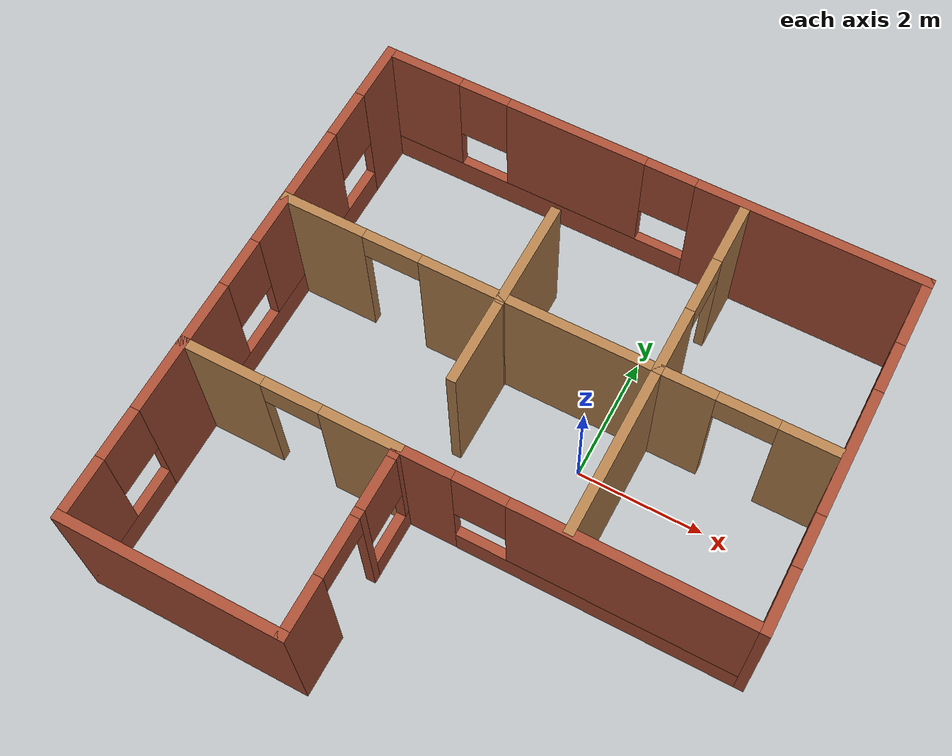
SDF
<?xml version='1.0'?>
<sdf version='1.7'>
  <model name='квартираы'>
    <pose>-0.914351 -0.390647 0 0 -0 0</pose>
    <link name='Wall_11'>
      <pose>-4.3 1.425 0 0 -0 -1.5708</pose>
      <visual name='Wall_11_Visual_0'>
        <pose>-2.38617 0 1.25 0 -0 0</pose>
        <geometry>
          <box>
            <size>0.97767 0.15 2.5</size>
          </box>
        </geometry>
        <material>
          <script>
            <uri>file://media/materials/scripts/gazebo.material</uri>
            <name>Gazebo/Bricks</name>
          </script>
          <ambient>1 1 1 1</ambient>
        </material>
        <meta>
          <layer>0</layer>
        </meta>
      </visual>
      <collision name='Wall_11_Collision_0'>
        <geometry>
          <box>
            <size>0.97767 0.15 2.5</size>
          </box>
        </geometry>
        <pose>-2.38617 0 1.25 0 -0 0</pose>
      </collision>
      <visual name='Wall_11_Visual_1'>
        <pose>0.488835 0 0.25 0 -0 0</pose>
        <geometry>
          <box>
            <size>4.77233 0.15 0.5</size>
          </box>
        </geometry>
        <material>
          <script>
            <uri>file://media/materials/scripts/gazebo.material</uri>
            <name>Gazebo/Bricks</name>
          </script>
          <ambient>1 1 1 1</ambient>
        </material>
        <meta>
          <layer>0</layer>
        </meta>
      </visual>
      <collision name='Wall_11_Collision_1'>
        <geometry>
          <box>
            <size>4.77233 0.15 0.5</size>
          </box>
        </geometry>
        <pose>0.488835 0 0.25 0 -0 0</pose>
      </collision>
      <visual name='Wall_11_Visual_2'>
        <pose>-0.055089 0 1.5 0 -0 0</pose>
        <geometry>
          <box>
            <size>2.08448 0.15 2</size>
          </box>
        </geometry>
        <material>
          <script>
            <uri>file://media/materials/scripts/gazebo.material</uri>
            <name>Gazebo/Bricks</name>
          </script>
          <ambient>1 1 1 1</ambient>
        </material>
        <meta>
          <layer>0</layer>
        </meta>
      </visual>
      <collision name='Wall_11_Collision_2'>
        <geometry>
          <box>
            <size>2.08448 0.15 2</size>
          </box>
        </geometry>
        <pose>-0.055089 0 1.5 0 -0 0</pose>
      </collision>
      <visual name='Wall_11_Visual_3'>
        <pose>2.33108 0 1.5 0 -0 0</pose>
        <geometry>
          <box>
            <size>1.08785 0.15 2</size>
          </box>
        </geometry>
        <material>
          <script>
            <uri>file://media/materials/scripts/gazebo.material</uri>
            <name>Gazebo/Bricks</name>
          </script>
          <ambient>1 1 1 1</ambient>
        </material>
        <meta>
          <layer>0</layer>
        </meta>
      </visual>
      <collision name='Wall_11_Collision_3'>
        <geometry>
          <box>
            <size>1.08785 0.15 2</size>
          </box>
        </geometry>
        <pose>2.33108 0 1.5 0 -0 0</pose>
      </collision>
      <visual name='Wall_11_Visual_4'>
        <pose>-1.49733 0 1.9 0 -0 0</pose>
        <geometry>
          <box>
            <size>0.8 0.15 1.2</size>
          </box>
        </geometry>
        <material>
          <script>
            <uri>file://media/materials/scripts/gazebo.material</uri>
            <name>Gazebo/Bricks</name>
          </script>
          <ambient>1 1 1 1</ambient>
        </material>
        <meta>
          <layer>0</layer>
        </meta>
      </visual>
      <collision name='Wall_11_Collision_4'>
        <geometry>
          <box>
            <size>0.8 0.15 1.2</size>
          </box>
        </geometry>
        <pose>-1.49733 0 1.9 0 -0 0</pose>
      </collision>
      <visual name='Wall_11_Visual_5'>
        <pose>1.38715 0 1.9 0 -0 0</pose>
        <geometry>
          <box>
            <size>0.8 0.15 1.2</size>
          </box>
        </geometry>
        <material>
          <script>
            <uri>file://media/materials/scripts/gazebo.material</uri>
            <name>Gazebo/Bricks</name>
          </script>
          <ambient>1 1 1 1</ambient>
        </material>
        <meta>
          <layer>0</layer>
        </meta>
      </visual>
      <collision name='Wall_11_Collision_5'>
        <geometry>
          <box>
            <size>0.8 0.15 1.2</size>
          </box>
        </geometry>
        <pose>1.38715 0 1.9 0 -0 0</pose>
      </collision>
    </link>
    <link name='Wall_13'>
      <pose>4.3 1.425 0 0 -0 1.5708</pose>
      <visual name='Wall_13_Visual_0'>
        <pose>-2.3776 0 1.25 0 -0 0</pose>
        <geometry>
          <box>
            <size>0.9948 0.15 2.5</size>
          </box>
        </geometry>
        <material>
          <script>
            <uri>file://media/materials/scripts/gazebo.material</uri>
            <name>Gazebo/Bricks</name>
          </script>
          <ambient>1 1 1 1</ambient>
        </material>
        <meta>
          <layer>0</layer>
        </meta>
      </visual>
      <collision name='Wall_13_Collision_0'>
        <geometry>
          <box>
            <size>0.9948 0.15 2.5</size>
          </box>
        </geometry>
        <pose>-2.3776 0 1.25 0 -0 0</pose>
      </collision>
      <visual name='Wall_13_Visual_1'>
        <pose>0.4974 0 0.25 0 -0 0</pose>
        <geometry>
          <box>
            <size>4.7552 0.15 0.5</size>
          </box>
        </geometry>
        <material>
          <script>
            <uri>file://media/materials/scripts/gazebo.material</uri>
            <name>Gazebo/Bricks</name>
          </script>
          <ambient>1 1 1 1</ambient>
        </material>
        <meta>
          <layer>0</layer>
        </meta>
      </visual>
      <collision name='Wall_13_Collision_1'>
        <geometry>
          <box>
            <size>4.7552 0.15 0.5</size>
          </box>
        </geometry>
        <pose>0.4974 0 0.25 0 -0 0</pose>
      </collision>
      <visual name='Wall_13_Visual_2'>
        <pose>-0.084483 0 1.5 0 -0 0</pose>
        <geometry>
          <box>
            <size>1.99144 0.15 2</size>
          </box>
        </geometry>
        <material>
          <script>
            <uri>file://media/materials/scripts/gazebo.material</uri>
            <name>Gazebo/Bricks</name>
          </script>
          <ambient>1 1 1 1</ambient>
        </material>
        <meta>
          <layer>0</layer>
        </meta>
      </visual>
      <collision name='Wall_13_Collision_2'>
        <geometry>
          <box>
            <size>1.99144 0.15 2</size>
          </box>
        </geometry>
        <pose>-0.084483 0 1.5 0 -0 0</pose>
      </collision>
      <visual name='Wall_13_Visual_3'>
        <pose>2.29312 0 1.5 0 -0 0</pose>
        <geometry>
          <box>
            <size>1.16376 0.15 2</size>
          </box>
        </geometry>
        <material>
          <script>
            <uri>file://media/materials/scripts/gazebo.material</uri>
            <name>Gazebo/Bricks</name>
          </script>
          <ambient>1 1 1 1</ambient>
        </material>
        <meta>
          <layer>0</layer>
        </meta>
      </visual>
      <collision name='Wall_13_Collision_3'>
        <geometry>
          <box>
            <size>1.16376 0.15 2</size>
          </box>
        </geometry>
        <pose>2.29312 0 1.5 0 -0 0</pose>
      </collision>
      <visual name='Wall_13_Visual_4'>
        <pose>-1.4802 0 1.9 0 -0 0</pose>
        <geometry>
          <box>
            <size>0.8 0.15 1.2</size>
          </box>
        </geometry>
        <material>
          <script>
            <uri>file://media/materials/scripts/gazebo.material</uri>
            <name>Gazebo/Bricks</name>
          </script>
          <ambient>1 1 1 1</ambient>
        </material>
        <meta>
          <layer>0</layer>
        </meta>
      </visual>
      <collision name='Wall_13_Collision_4'>
        <geometry>
          <box>
            <size>0.8 0.15 1.2</size>
          </box>
        </geometry>
        <pose>-1.4802 0 1.9 0 -0 0</pose>
      </collision>
      <visual name='Wall_13_Visual_5'>
        <pose>1.31123 0 1.9 0 -0 0</pose>
        <geometry>
          <box>
            <size>0.8 0.15 1.2</size>
          </box>
        </geometry>
        <material>
          <script>
            <uri>file://media/materials/scripts/gazebo.material</uri>
            <name>Gazebo/Bricks</name>
          </script>
          <ambient>1 1 1 1</ambient>
        </material>
        <meta>
          <layer>0</layer>
        </meta>
      </visual>
      <collision name='Wall_13_Collision_5'>
        <geometry>
          <box>
            <size>0.8 0.15 1.2</size>
          </box>
        </geometry>
        <pose>1.31123 0 1.9 0 -0 0</pose>
      </collision>
    </link>
    <link name='Wall_14'>
      <pose>0 4.225 0 0 -0 3.14159</pose>
      <visual name='Wall_14_Visual_0'>
        <pose>-2.57533 0 1.25 0 -0 0</pose>
        <geometry>
          <box>
            <size>3.59935 0.15 2.5</size>
          </box>
        </geometry>
        <material>
          <script>
            <uri>file://media/materials/scripts/gazebo.material</uri>
            <name>Gazebo/Bricks</name>
          </script>
          <ambient>1 1 1 1</ambient>
        </material>
        <meta>
          <layer>0</layer>
        </meta>
      </visual>
      <collision name='Wall_14_Collision_0'>
        <geometry>
          <box>
            <size>3.59935 0.15 2.5</size>
          </box>
        </geometry>
        <pose>-2.57533 0 1.25 0 -0 0</pose>
      </collision>
      <visual name='Wall_14_Visual_1'>
        <pose>1.79967 0 0.25 0 -0 0</pose>
        <geometry>
          <box>
            <size>5.15065 0.15 0.5</size>
          </box>
        </geometry>
        <material>
          <script>
            <uri>file://media/materials/scripts/gazebo.material</uri>
            <name>Gazebo/Bricks</name>
          </script>
          <ambient>1 1 1 1</ambient>
        </material>
        <meta>
          <layer>0</layer>
        </meta>
      </visual>
      <collision name='Wall_14_Collision_1'>
        <geometry>
          <box>
            <size>5.15065 0.15 0.5</size>
          </box>
        </geometry>
        <pose>1.79967 0 0.25 0 -0 0</pose>
      </collision>
      <visual name='Wall_14_Visual_2'>
        <pose>1.148 0 1.5 0 -0 0</pose>
        <geometry>
          <box>
            <size>2.24732 0.15 2</size>
          </box>
        </geometry>
        <material>
          <script>
            <uri>file://media/materials/scripts/gazebo.material</uri>
            <name>Gazebo/Bricks</name>
          </script>
          <ambient>1 1 1 1</ambient>
        </material>
        <meta>
          <layer>0</layer>
        </meta>
      </visual>
      <collision name='Wall_14_Collision_2'>
        <geometry>
          <box>
            <size>2.24732 0.15 2</size>
          </box>
        </geometry>
        <pose>1.148 0 1.5 0 -0 0</pose>
      </collision>
      <visual name='Wall_14_Visual_3'>
        <pose>3.72333 0 1.5 0 -0 0</pose>
        <geometry>
          <box>
            <size>1.30334 0.15 2</size>
          </box>
        </geometry>
        <material>
          <script>
            <uri>file://media/materials/scripts/gazebo.material</uri>
            <name>Gazebo/Bricks</name>
          </script>
          <ambient>1 1 1 1</ambient>
        </material>
        <meta>
          <layer>0</layer>
        </meta>
      </visual>
      <collision name='Wall_14_Collision_3'>
        <geometry>
          <box>
            <size>1.30334 0.15 2</size>
          </box>
        </geometry>
        <pose>3.72333 0 1.5 0 -0 0</pose>
      </collision>
      <visual name='Wall_14_Visual_4'>
        <pose>-0.375653 0 1.9 0 -0 0</pose>
        <geometry>
          <box>
            <size>0.8 0.15 1.2</size>
          </box>
        </geometry>
        <material>
          <script>
            <uri>file://media/materials/scripts/gazebo.material</uri>
            <name>Gazebo/Bricks</name>
          </script>
          <ambient>1 1 1 1</ambient>
        </material>
        <meta>
          <layer>0</layer>
        </meta>
      </visual>
      <collision name='Wall_14_Collision_4'>
        <geometry>
          <box>
            <size>0.8 0.15 1.2</size>
          </box>
        </geometry>
        <pose>-0.375653 0 1.9 0 -0 0</pose>
      </collision>
      <visual name='Wall_14_Visual_5'>
        <pose>2.67166 0 1.9 0 -0 0</pose>
        <geometry>
          <box>
            <size>0.8 0.15 1.2</size>
          </box>
        </geometry>
        <material>
          <script>
            <uri>file://media/materials/scripts/gazebo.material</uri>
            <name>Gazebo/Bricks</name>
          </script>
          <ambient>1 1 1 1</ambient>
        </material>
        <meta>
          <layer>0</layer>
        </meta>
      </visual>
      <collision name='Wall_14_Collision_5'>
        <geometry>
          <box>
            <size>0.8 0.15 1.2</size>
          </box>
        </geometry>
        <pose>2.67166 0 1.9 0 -0 0</pose>
      </collision>
    </link>
    <link name='Wall_16'>
      <pose>-4.3 -2.8 0 0 -0 -1.5708</pose>
      <visual name='Wall_16_Visual_0'>
        <pose>-0.89179 0 1.25 0 -0 0</pose>
        <geometry>
          <box>
            <size>1.21642 0.15 2.5</size>
          </box>
        </geometry>
        <material>
          <script>
            <uri>file://media/materials/scripts/gazebo.material</uri>
            <name>Gazebo/Bricks</name>
          </script>
          <ambient>1 1 1 1</ambient>
        </material>
        <meta>
          <layer>0</layer>
        </meta>
      </visual>
      <collision name='Wall_16_Collision_0'>
        <geometry>
          <box>
            <size>1.21642 0.15 2.5</size>
          </box>
        </geometry>
        <pose>-0.89179 0 1.25 0 -0 0</pose>
      </collision>
      <visual name='Wall_16_Visual_1'>
        <pose>0.60821 0 0.25 0 -0 0</pose>
        <geometry>
          <box>
            <size>1.78358 0.15 0.5</size>
          </box>
        </geometry>
        <material>
          <script>
            <uri>file://media/materials/scripts/gazebo.material</uri>
            <name>Gazebo/Bricks</name>
          </script>
          <ambient>1 1 1 1</ambient>
        </material>
        <meta>
          <layer>0</layer>
        </meta>
      </visual>
      <collision name='Wall_16_Collision_1'>
        <geometry>
          <box>
            <size>1.78358 0.15 0.5</size>
          </box>
        </geometry>
        <pose>0.60821 0 0.25 0 -0 0</pose>
      </collision>
      <visual name='Wall_16_Visual_2'>
        <pose>1.00821 0 1.5 0 -0 0</pose>
        <geometry>
          <box>
            <size>0.983579 0.15 2</size>
          </box>
        </geometry>
        <material>
          <script>
            <uri>file://media/materials/scripts/gazebo.material</uri>
            <name>Gazebo/Bricks</name>
          </script>
          <ambient>1 1 1 1</ambient>
        </material>
        <meta>
          <layer>0</layer>
        </meta>
      </visual>
      <collision name='Wall_16_Collision_2'>
        <geometry>
          <box>
            <size>0.983579 0.15 2</size>
          </box>
        </geometry>
        <pose>1.00821 0 1.5 0 -0 0</pose>
      </collision>
      <visual name='Wall_16_Visual_3'>
        <pose>0.116421 0 1.9 0 -0 0</pose>
        <geometry>
          <box>
            <size>0.8 0.15 1.2</size>
          </box>
        </geometry>
        <material>
          <script>
            <uri>file://media/materials/scripts/gazebo.material</uri>
            <name>Gazebo/Bricks</name>
          </script>
          <ambient>1 1 1 1</ambient>
        </material>
        <meta>
          <layer>0</layer>
        </meta>
      </visual>
      <collision name='Wall_16_Collision_3'>
        <geometry>
          <box>
            <size>0.8 0.15 1.2</size>
          </box>
        </geometry>
        <pose>0.116421 0 1.9 0 -0 0</pose>
      </collision>
    </link>
    <link name='Wall_17'>
      <collision name='Wall_17_Collision'>
        <geometry>
          <box>
            <size>3.5 0.15 2.5</size>
          </box>
        </geometry>
        <pose>0 0 1.25 0 -0 0</pose>
      </collision>
      <visual name='Wall_17_Visual'>
        <pose>0 0 1.25 0 -0 0</pose>
        <geometry>
          <box>
            <size>3.5 0.15 2.5</size>
          </box>
        </geometry>
        <material>
          <script>
            <uri>file://media/materials/scripts/gazebo.material</uri>
            <name>Gazebo/Bricks</name>
          </script>
          <ambient>1 1 1 1</ambient>
        </material>
        <meta>
          <layer>0</layer>
        </meta>
      </visual>
      <pose>-2.625 -4.225 0 0 -0 0</pose>
    </link>
    <link name='Wall_18'>
      <pose>-0.95 -2.8 0 0 -0 1.5708</pose>
      <visual name='Wall_18_Visual_0'>
        <pose>-1.03321 0 1.25 0 -0 0</pose>
        <geometry>
          <box>
            <size>0.933579 0.15 2.5</size>
          </box>
        </geometry>
        <material>
          <script>
            <uri>file://media/materials/scripts/gazebo.material</uri>
            <name>Gazebo/Bricks</name>
          </script>
          <ambient>1 1 1 1</ambient>
        </material>
        <meta>
          <layer>0</layer>
        </meta>
      </visual>
      <collision name='Wall_18_Collision_0'>
        <geometry>
          <box>
            <size>0.933579 0.15 2.5</size>
          </box>
        </geometry>
        <pose>-1.03321 0 1.25 0 -0 0</pose>
      </collision>
      <visual name='Wall_18_Visual_1'>
        <pose>0.39708 0 1.25 0 -0 0</pose>
        <geometry>
          <box>
            <size>0.127002 0.15 2.5</size>
          </box>
        </geometry>
        <material>
          <script>
            <uri>file://media/materials/scripts/gazebo.material</uri>
            <name>Gazebo/Bricks</name>
          </script>
          <ambient>1 1 1 1</ambient>
        </material>
        <meta>
          <layer>0</layer>
        </meta>
      </visual>
      <collision name='Wall_18_Collision_1'>
        <geometry>
          <box>
            <size>0.127002 0.15 2.5</size>
          </box>
        </geometry>
        <pose>0.39708 0 1.25 0 -0 0</pose>
      </collision>
      <visual name='Wall_18_Visual_2'>
        <pose>0.980291 0 0.25 0 -0 0</pose>
        <geometry>
          <box>
            <size>1.03942 0.15 0.5</size>
          </box>
        </geometry>
        <material>
          <script>
            <uri>file://media/materials/scripts/gazebo.material</uri>
            <name>Gazebo/Bricks</name>
          </script>
          <ambient>1 1 1 1</ambient>
        </material>
        <meta>
          <layer>0</layer>
        </meta>
      </visual>
      <collision name='Wall_18_Collision_2'>
        <geometry>
          <box>
            <size>1.03942 0.15 0.5</size>
          </box>
        </geometry>
        <pose>0.980291 0 0.25 0 -0 0</pose>
      </collision>
      <visual name='Wall_18_Visual_3'>
        <pose>1.38029 0 1.5 0 -0 0</pose>
        <geometry>
          <box>
            <size>0.239419 0.15 2</size>
          </box>
        </geometry>
        <material>
          <script>
            <uri>file://media/materials/scripts/gazebo.material</uri>
            <name>Gazebo/Bricks</name>
          </script>
          <ambient>1 1 1 1</ambient>
        </material>
        <meta>
          <layer>0</layer>
        </meta>
      </visual>
      <collision name='Wall_18_Collision_3'>
        <geometry>
          <box>
            <size>0.239419 0.15 2</size>
          </box>
        </geometry>
        <pose>1.38029 0 1.5 0 -0 0</pose>
      </collision>
      <visual name='Wall_18_Visual_4'>
        <pose>0.860581 0 1.9 0 -0 0</pose>
        <geometry>
          <box>
            <size>0.8 0.15 1.2</size>
          </box>
        </geometry>
        <material>
          <script>
            <uri>file://media/materials/scripts/gazebo.material</uri>
            <name>Gazebo/Bricks</name>
          </script>
          <ambient>1 1 1 1</ambient>
        </material>
        <meta>
          <layer>0</layer>
        </meta>
      </visual>
      <collision name='Wall_18_Collision_4'>
        <geometry>
          <box>
            <size>0.8 0.15 1.2</size>
          </box>
        </geometry>
        <pose>0.860581 0 1.9 0 -0 0</pose>
      </collision>
      <visual name='Wall_18_Visual_5'>
        <pose>-0.116421 0 2.25 0 -0 0</pose>
        <geometry>
          <box>
            <size>0.9 0.15 0.5</size>
          </box>
        </geometry>
        <material>
          <script>
            <uri>file://media/materials/scripts/gazebo.material</uri>
            <name>Gazebo/Bricks</name>
          </script>
          <ambient>1 1 1 1</ambient>
        </material>
        <meta>
          <layer>0</layer>
        </meta>
      </visual>
      <collision name='Wall_18_Collision_5'>
        <geometry>
          <box>
            <size>0.9 0.15 0.5</size>
          </box>
        </geometry>
        <pose>-0.116421 0 2.25 0 -0 0</pose>
      </collision>
    </link>
    <link name='Wall_20'>
      <collision name='Wall_20_Collision'>
        <geometry>
          <box>
            <size>2.75 0.15 2.5</size>
          </box>
        </geometry>
        <pose>0 0 1.25 0 -0 0</pose>
      </collision>
      <visual name='Wall_20_Visual'>
        <pose>0 0 1.25 0 -0 0</pose>
        <geometry>
          <box>
            <size>2.75 0.15 2.5</size>
          </box>
        </geometry>
        <material>
          <script>
            <uri>file://media/materials/scripts/gazebo.material</uri>
            <name>Gazebo/Wood</name>
          </script>
          <ambient>1 1 1 1</ambient>
        </material>
        <meta>
          <layer>0</layer>
        </meta>
      </visual>
      <pose>1.56201 -0.034608 0 0 -0 1.5708</pose>
    </link>
    <link name='Wall_21'>
      <pose>2.86201 1.26539 0 0 -0 0</pose>
      <visual name='Wall_21_Visual_0'>
        <pose>-0.899534 0 1.25 0 -0 0</pose>
        <geometry>
          <box>
            <size>0.950932 0.15 2.5</size>
          </box>
        </geometry>
        <material>
          <script>
            <uri>file://media/materials/scripts/gazebo.material</uri>
            <name>Gazebo/Wood</name>
          </script>
          <ambient>1 1 1 1</ambient>
        </material>
        <meta>
          <layer>0</layer>
        </meta>
      </visual>
      <collision name='Wall_21_Collision_0'>
        <geometry>
          <box>
            <size>0.950932 0.15 2.5</size>
          </box>
        </geometry>
        <pose>-0.899534 0 1.25 0 -0 0</pose>
      </collision>
      <visual name='Wall_21_Visual_1'>
        <pose>0.925466 0 1.25 0 -0 0</pose>
        <geometry>
          <box>
            <size>0.899068 0.15 2.5</size>
          </box>
        </geometry>
        <material>
          <script>
            <uri>file://media/materials/scripts/gazebo.material</uri>
            <name>Gazebo/Wood</name>
          </script>
          <ambient>1 1 1 1</ambient>
        </material>
        <meta>
          <layer>0</layer>
        </meta>
      </visual>
      <collision name='Wall_21_Collision_1'>
        <geometry>
          <box>
            <size>0.899068 0.15 2.5</size>
          </box>
        </geometry>
        <pose>0.925466 0 1.25 0 -0 0</pose>
      </collision>
      <visual name='Wall_21_Visual_2'>
        <pose>0.025932 0 2.25 0 -0 0</pose>
        <geometry>
          <box>
            <size>0.9 0.15 0.5</size>
          </box>
        </geometry>
        <material>
          <script>
            <uri>file://media/materials/scripts/gazebo.material</uri>
            <name>Gazebo/Wood</name>
          </script>
          <ambient>1 1 1 1</ambient>
        </material>
        <meta>
          <layer>0</layer>
        </meta>
      </visual>
      <collision name='Wall_21_Collision_2'>
        <geometry>
          <box>
            <size>0.9 0.15 0.5</size>
          </box>
        </geometry>
        <pose>0.025932 0 2.25 0 -0 0</pose>
      </collision>
    </link>
    <link name='Wall_23'>
      <pose>-1.36299 1.26539 0 0 -0 3.14159</pose>
      <visual name='Wall_23_Visual_0'>
        <pose>-1.12882 0 1.25 0 -0 0</pose>
        <geometry>
          <box>
            <size>3.74237 0.15 2.5</size>
          </box>
        </geometry>
        <material>
          <script>
            <uri>file://media/materials/scripts/gazebo.material</uri>
            <name>Gazebo/Wood</name>
          </script>
          <ambient>1 1 1 1</ambient>
        </material>
        <meta>
          <layer>0</layer>
        </meta>
      </visual>
      <collision name='Wall_23_Collision_0'>
        <geometry>
          <box>
            <size>3.74237 0.15 2.5</size>
          </box>
        </geometry>
        <pose>-1.12882 0 1.25 0 -0 0</pose>
      </collision>
      <visual name='Wall_23_Visual_1'>
        <pose>2.32118 0 1.25 0 -0 0</pose>
        <geometry>
          <box>
            <size>1.35763 0.15 2.5</size>
          </box>
        </geometry>
        <material>
          <script>
            <uri>file://media/materials/scripts/gazebo.material</uri>
            <name>Gazebo/Wood</name>
          </script>
          <ambient>1 1 1 1</ambient>
        </material>
        <meta>
          <layer>0</layer>
        </meta>
      </visual>
      <collision name='Wall_23_Collision_1'>
        <geometry>
          <box>
            <size>1.35763 0.15 2.5</size>
          </box>
        </geometry>
        <pose>2.32118 0 1.25 0 -0 0</pose>
      </collision>
      <visual name='Wall_23_Visual_2'>
        <pose>1.19237 0 2.25 0 -0 0</pose>
        <geometry>
          <box>
            <size>0.9 0.15 0.5</size>
          </box>
        </geometry>
        <material>
          <script>
            <uri>file://media/materials/scripts/gazebo.material</uri>
            <name>Gazebo/Wood</name>
          </script>
          <ambient>1 1 1 1</ambient>
        </material>
        <meta>
          <layer>0</layer>
        </meta>
      </visual>
      <collision name='Wall_23_Collision_2'>
        <geometry>
          <box>
            <size>0.9 0.15 0.5</size>
          </box>
        </geometry>
        <pose>1.19237 0 2.25 0 -0 0</pose>
      </collision>
    </link>
    <link name='Wall_25'>
      <pose>1.56201 2.69039 0 0 -0 1.5708</pose>
      <visual name='Wall_25_Visual_0'>
        <pose>-0.952079 0 1.25 0 -0 0</pose>
        <geometry>
          <box>
            <size>1.09584 0.15 2.5</size>
          </box>
        </geometry>
        <material>
          <script>
            <uri>file://media/materials/scripts/gazebo.material</uri>
            <name>Gazebo/Wood</name>
          </script>
          <ambient>1 1 1 1</ambient>
        </material>
        <meta>
          <layer>0</layer>
        </meta>
      </visual>
      <collision name='Wall_25_Collision_0'>
        <geometry>
          <box>
            <size>1.09584 0.15 2.5</size>
          </box>
        </geometry>
        <pose>-0.952079 0 1.25 0 -0 0</pose>
      </collision>
      <visual name='Wall_25_Visual_1'>
        <pose>0.997921 0 1.25 0 -0 0</pose>
        <geometry>
          <box>
            <size>1.00416 0.15 2.5</size>
          </box>
        </geometry>
        <material>
          <script>
            <uri>file://media/materials/scripts/gazebo.material</uri>
            <name>Gazebo/Wood</name>
          </script>
          <ambient>1 1 1 1</ambient>
        </material>
        <meta>
          <layer>0</layer>
        </meta>
      </visual>
      <collision name='Wall_25_Collision_1'>
        <geometry>
          <box>
            <size>1.00416 0.15 2.5</size>
          </box>
        </geometry>
        <pose>0.997921 0 1.25 0 -0 0</pose>
      </collision>
      <visual name='Wall_25_Visual_2'>
        <pose>0.045842 0 2.25 0 -0 0</pose>
        <geometry>
          <box>
            <size>0.9 0.15 0.5</size>
          </box>
        </geometry>
        <material>
          <script>
            <uri>file://media/materials/scripts/gazebo.material</uri>
            <name>Gazebo/Wood</name>
          </script>
          <ambient>1 1 1 1</ambient>
        </material>
        <meta>
          <layer>0</layer>
        </meta>
      </visual>
      <collision name='Wall_25_Collision_2'>
        <geometry>
          <box>
            <size>0.9 0.15 0.5</size>
          </box>
        </geometry>
        <pose>0.045842 0 2.25 0 -0 0</pose>
      </collision>
    </link>
    <link name='Wall_27'>
      <collision name='Wall_27_Collision'>
        <geometry>
          <box>
            <size>1.5 0.15 2.5</size>
          </box>
        </geometry>
        <pose>0 0 1.25 0 -0 0</pose>
      </collision>
      <visual name='Wall_27_Visual'>
        <pose>0 0 1.25 0 -0 0</pose>
        <geometry>
          <box>
            <size>1.5 0.15 2.5</size>
          </box>
        </geometry>
        <material>
          <script>
            <uri>file://media/materials/scripts/gazebo.material</uri>
            <name>Gazebo/Wood</name>
          </script>
          <ambient>1 1 1 1</ambient>
        </material>
        <meta>
          <layer>0</layer>
        </meta>
      </visual>
      <pose>-0.810706 0.549208 0 0 -0 -1.5708</pose>
    </link>
    <link name='Wall_29'>
      <collision name='Wall_29_Collision'>
        <geometry>
          <box>
            <size>1.75 0.15 2.5</size>
          </box>
        </geometry>
        <pose>0 0 1.25 0 -0 0</pose>
      </collision>
      <visual name='Wall_29_Visual'>
        <pose>0 0 1.25 0 -0 0</pose>
        <geometry>
          <box>
            <size>1.75 0.15 2.5</size>
          </box>
        </geometry>
        <material>
          <script>
            <uri>file://media/materials/scripts/gazebo.material</uri>
            <name>Gazebo/Wood</name>
          </script>
          <ambient>1 1 1 1</ambient>
        </material>
        <meta>
          <layer>0</layer>
        </meta>
      </visual>
      <pose>-0.810706 2.02421 0 0 -0 1.5708</pose>
    </link>
    <link name='Wall_44'>
      <pose>1.6 -1.375 0 0 -0 0</pose>
      <visual name='Wall_44_Visual_0'>
        <pose>-2.1712 0 1.25 0 -0 0</pose>
        <geometry>
          <box>
            <size>0.907606 0.15 2.5</size>
          </box>
        </geometry>
        <material>
          <script>
            <uri>file://media/materials/scripts/gazebo.material</uri>
            <name>Gazebo/Bricks</name>
          </script>
          <ambient>1 1 1 1</ambient>
        </material>
        <meta>
          <layer>0</layer>
        </meta>
      </visual>
      <collision name='Wall_44_Collision_0'>
        <geometry>
          <box>
            <size>0.907606 0.15 2.5</size>
          </box>
        </geometry>
        <pose>-2.1712 0 1.25 0 -0 0</pose>
      </collision>
      <visual name='Wall_44_Visual_1'>
        <pose>0.453803 0 0.25 0 -0 0</pose>
        <geometry>
          <box>
            <size>4.34239 0.15 0.5</size>
          </box>
        </geometry>
        <material>
          <script>
            <uri>file://media/materials/scripts/gazebo.material</uri>
            <name>Gazebo/Bricks</name>
          </script>
          <ambient>1 1 1 1</ambient>
        </material>
        <meta>
          <layer>0</layer>
        </meta>
      </visual>
      <collision name='Wall_44_Collision_1'>
        <geometry>
          <box>
            <size>4.34239 0.15 0.5</size>
          </box>
        </geometry>
        <pose>0.453803 0 0.25 0 -0 0</pose>
      </collision>
      <visual name='Wall_44_Visual_2'>
        <pose>0.853803 0 1.5 0 -0 0</pose>
        <geometry>
          <box>
            <size>3.54239 0.15 2</size>
          </box>
        </geometry>
        <material>
          <script>
            <uri>file://media/materials/scripts/gazebo.material</uri>
            <name>Gazebo/Bricks</name>
          </script>
          <ambient>1 1 1 1</ambient>
        </material>
        <meta>
          <layer>0</layer>
        </meta>
      </visual>
      <collision name='Wall_44_Collision_2'>
        <geometry>
          <box>
            <size>3.54239 0.15 2</size>
          </box>
        </geometry>
        <pose>0.853803 0 1.5 0 -0 0</pose>
      </collision>
      <visual name='Wall_44_Visual_3'>
        <pose>-1.31739 0 1.9 0 -0 0</pose>
        <geometry>
          <box>
            <size>0.8 0.15 1.2</size>
          </box>
        </geometry>
        <material>
          <script>
            <uri>file://media/materials/scripts/gazebo.material</uri>
            <name>Gazebo/Bricks</name>
          </script>
          <ambient>1 1 1 1</ambient>
        </material>
        <meta>
          <layer>0</layer>
        </meta>
      </visual>
      <collision name='Wall_44_Collision_3'>
        <geometry>
          <box>
            <size>0.8 0.15 1.2</size>
          </box>
        </geometry>
        <pose>-1.31739 0 1.9 0 -0 0</pose>
      </collision>
    </link>
    <link name='Wall_46'>
      <pose>-2.625 -1.375 0 0 -0 3.14159</pose>
      <visual name='Wall_46_Visual_0'>
        <pose>-1.12319 0 1.25 0 -0 0</pose>
        <geometry>
          <box>
            <size>1.25361 0.15 2.5</size>
          </box>
        </geometry>
        <material>
          <script>
            <uri>file://media/materials/scripts/gazebo.material</uri>
            <name>Gazebo/Wood</name>
          </script>
          <ambient>1 1 1 1</ambient>
        </material>
        <meta>
          <layer>0</layer>
        </meta>
      </visual>
      <collision name='Wall_46_Collision_0'>
        <geometry>
          <box>
            <size>1.25361 0.15 2.5</size>
          </box>
        </geometry>
        <pose>-1.12319 0 1.25 0 -0 0</pose>
      </collision>
      <visual name='Wall_46_Visual_1'>
        <pose>1.07681 0 1.25 0 -0 0</pose>
        <geometry>
          <box>
            <size>1.34638 0.15 2.5</size>
          </box>
        </geometry>
        <material>
          <script>
            <uri>file://media/materials/scripts/gazebo.material</uri>
            <name>Gazebo/Wood</name>
          </script>
          <ambient>1 1 1 1</ambient>
        </material>
        <meta>
          <layer>0</layer>
        </meta>
      </visual>
      <collision name='Wall_46_Collision_1'>
        <geometry>
          <box>
            <size>1.34638 0.15 2.5</size>
          </box>
        </geometry>
        <pose>1.07681 0 1.25 0 -0 0</pose>
      </collision>
      <visual name='Wall_46_Visual_2'>
        <pose>-0.046385 0 2.25 0 -0 0</pose>
        <geometry>
          <box>
            <size>0.9 0.15 0.5</size>
          </box>
        </geometry>
        <material>
          <script>
            <uri>file://media/materials/scripts/gazebo.material</uri>
            <name>Gazebo/Wood</name>
          </script>
          <ambient>1 1 1 1</ambient>
        </material>
        <meta>
          <layer>0</layer>
        </meta>
      </visual>
      <collision name='Wall_46_Collision_2'>
        <geometry>
          <box>
            <size>0.9 0.15 0.5</size>
          </box>
        </geometry>
        <pose>-0.046385 0 2.25 0 -0 0</pose>
      </collision>
    </link>
    <static>1</static>
  </model>
</sdf>
